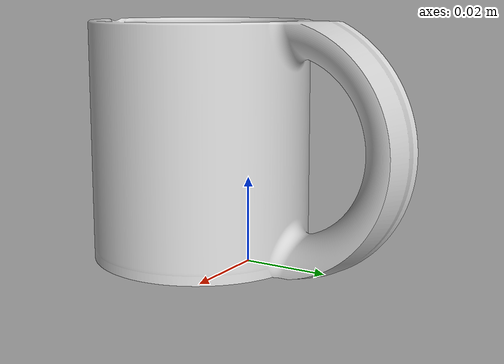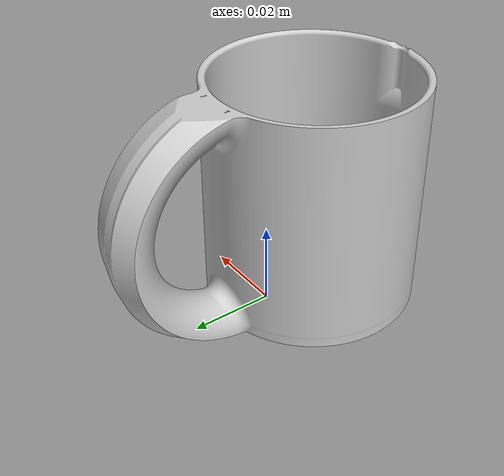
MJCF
<?xml version="1.0" ?>
<mujoco model="mug">
  <asset>
    <mesh name="visual_mesh" file="../meshes/mug_visual.stl"/>
    <mesh name="hull_0" file="../meshes/mug_hull_0.stl"/>
    <mesh name="hull_1" file="../meshes/mug_hull_1.stl"/>
    <mesh name="hull_2" file="../meshes/mug_hull_2.stl"/>
    <mesh name="hull_3" file="../meshes/mug_hull_3.stl"/>
    <mesh name="hull_4" file="../meshes/mug_hull_4.stl"/>
    <mesh name="hull_5" file="../meshes/mug_hull_5.stl"/>
    <mesh name="hull_6" file="../meshes/mug_hull_6.stl"/>
    <mesh name="hull_7" file="../meshes/mug_hull_7.stl"/>
    <mesh name="hull_8" file="../meshes/mug_hull_8.stl"/>
    <mesh name="hull_9" file="../meshes/mug_hull_9.stl"/>
    <mesh name="hull_10" file="../meshes/mug_hull_10.stl"/>
    <mesh name="hull_11" file="../meshes/mug_hull_11.stl"/>
    <mesh name="hull_12" file="../meshes/mug_hull_12.stl"/>
    <mesh name="hull_13" file="../meshes/mug_hull_13.stl"/>
    <mesh name="hull_14" file="../meshes/mug_hull_14.stl"/>
    <mesh name="hull_15" file="../meshes/mug_hull_15.stl"/>
    <mesh name="hull_16" file="../meshes/mug_hull_16.stl"/>
    <mesh name="hull_17" file="../meshes/mug_hull_17.stl"/>
    <mesh name="hull_18" file="../meshes/mug_hull_18.stl"/>
    <mesh name="hull_19" file="../meshes/mug_hull_19.stl"/>
    <mesh name="hull_20" file="../meshes/mug_hull_20.stl"/>
    <mesh name="hull_21" file="../meshes/mug_hull_21.stl"/>
    <mesh name="hull_22" file="../meshes/mug_hull_22.stl"/>
    <mesh name="hull_23" file="../meshes/mug_hull_23.stl"/>
    <mesh name="hull_24" file="../meshes/mug_hull_24.stl"/>
    <mesh name="hull_25" file="../meshes/mug_hull_25.stl"/>
    <mesh name="hull_26" file="../meshes/mug_hull_26.stl"/>
    <mesh name="hull_27" file="../meshes/mug_hull_27.stl"/>
    <mesh name="hull_28" file="../meshes/mug_hull_28.stl"/>
    <mesh name="hull_29" file="../meshes/mug_hull_29.stl"/>
    <mesh name="hull_30" file="../meshes/mug_hull_30.stl"/>
    <mesh name="hull_31" file="../meshes/mug_hull_31.stl"/>
  </asset>
  <worldbody>
    <body>
      <body name="object">
        <geom name="visual" type="mesh" mesh="visual_mesh" rgba="0.8 0.8 0.8 1.0" contype="0" conaffinity="0" group="1" density="1" pos="0 0 0.0001"/>
        <geom name="collision_0" type="mesh" mesh="hull_0" rgba="0.5 0.5 0.5 0.01" density="15.625" friction="0.95 0.3 0.1" condim="4" solref="0.001 1" solimp="0.998 0.998 0.001" group="0"/>
        <geom name="collision_1" type="mesh" mesh="hull_1" rgba="0.5 0.5 0.5 0.01" density="15.625" friction="0.95 0.3 0.1" condim="4" solref="0.001 1" solimp="0.998 0.998 0.001" group="0"/>
        <geom name="collision_2" type="mesh" mesh="hull_2" rgba="0.5 0.5 0.5 0.01" density="15.625" friction="0.95 0.3 0.1" condim="4" solref="0.001 1" solimp="0.998 0.998 0.001" group="0"/>
        <geom name="collision_3" type="mesh" mesh="hull_3" rgba="0.5 0.5 0.5 0.01" density="15.625" friction="0.95 0.3 0.1" condim="4" solref="0.001 1" solimp="0.998 0.998 0.001" group="0"/>
        <geom name="collision_4" type="mesh" mesh="hull_4" rgba="0.5 0.5 0.5 0.01" density="15.625" friction="0.95 0.3 0.1" condim="4" solref="0.001 1" solimp="0.998 0.998 0.001" group="0"/>
        <geom name="collision_5" type="mesh" mesh="hull_5" rgba="0.5 0.5 0.5 0.01" density="15.625" friction="0.95 0.3 0.1" condim="4" solref="0.001 1" solimp="0.998 0.998 0.001" group="0"/>
        <geom name="collision_6" type="mesh" mesh="hull_6" rgba="0.5 0.5 0.5 0.01" density="15.625" friction="0.95 0.3 0.1" condim="4" solref="0.001 1" solimp="0.998 0.998 0.001" group="0"/>
        <geom name="collision_7" type="mesh" mesh="hull_7" rgba="0.5 0.5 0.5 0.01" density="15.625" friction="0.95 0.3 0.1" condim="4" solref="0.001 1" solimp="0.998 0.998 0.001" group="0"/>
        <geom name="collision_8" type="mesh" mesh="hull_8" rgba="0.5 0.5 0.5 0.01" density="15.625" friction="0.95 0.3 0.1" condim="4" solref="0.001 1" solimp="0.998 0.998 0.001" group="0"/>
        <geom name="collision_9" type="mesh" mesh="hull_9" rgba="0.5 0.5 0.5 0.01" density="15.625" friction="0.95 0.3 0.1" condim="4" solref="0.001 1" solimp="0.998 0.998 0.001" group="0"/>
        <geom name="collision_10" type="mesh" mesh="hull_10" rgba="0.5 0.5 0.5 0.01" density="15.625" friction="0.95 0.3 0.1" condim="4" solref="0.001 1" solimp="0.998 0.998 0.001" group="0"/>
        <geom name="collision_11" type="mesh" mesh="hull_11" rgba="0.5 0.5 0.5 0.01" density="15.625" friction="0.95 0.3 0.1" condim="4" solref="0.001 1" solimp="0.998 0.998 0.001" group="0"/>
        <geom name="collision_12" type="mesh" mesh="hull_12" rgba="0.5 0.5 0.5 0.01" density="15.625" friction="0.95 0.3 0.1" condim="4" solref="0.001 1" solimp="0.998 0.998 0.001" group="0"/>
        <geom name="collision_13" type="mesh" mesh="hull_13" rgba="0.5 0.5 0.5 0.01" density="15.625" friction="0.95 0.3 0.1" condim="4" solref="0.001 1" solimp="0.998 0.998 0.001" group="0"/>
        <geom name="collision_14" type="mesh" mesh="hull_14" rgba="0.5 0.5 0.5 0.01" density="15.625" friction="0.95 0.3 0.1" condim="4" solref="0.001 1" solimp="0.998 0.998 0.001" group="0"/>
        <geom name="collision_15" type="mesh" mesh="hull_15" rgba="0.5 0.5 0.5 0.01" density="15.625" friction="0.95 0.3 0.1" condim="4" solref="0.001 1" solimp="0.998 0.998 0.001" group="0"/>
        <geom name="collision_16" type="mesh" mesh="hull_16" rgba="0.5 0.5 0.5 0.01" density="15.625" friction="0.95 0.3 0.1" condim="4" solref="0.001 1" solimp="0.998 0.998 0.001" group="0"/>
        <geom name="collision_17" type="mesh" mesh="hull_17" rgba="0.5 0.5 0.5 0.01" density="15.625" friction="0.95 0.3 0.1" condim="4" solref="0.001 1" solimp="0.998 0.998 0.001" group="0"/>
        <geom name="collision_18" type="mesh" mesh="hull_18" rgba="0.5 0.5 0.5 0.01" density="15.625" friction="0.95 0.3 0.1" condim="4" solref="0.001 1" solimp="0.998 0.998 0.001" group="0"/>
        <geom name="collision_19" type="mesh" mesh="hull_19" rgba="0.5 0.5 0.5 0.01" density="15.625" friction="0.95 0.3 0.1" condim="4" solref="0.001 1" solimp="0.998 0.998 0.001" group="0"/>
        <geom name="collision_20" type="mesh" mesh="hull_20" rgba="0.5 0.5 0.5 0.01" density="15.625" friction="0.95 0.3 0.1" condim="4" solref="0.001 1" solimp="0.998 0.998 0.001" group="0"/>
        <geom name="collision_21" type="mesh" mesh="hull_21" rgba="0.5 0.5 0.5 0.01" density="15.625" friction="0.95 0.3 0.1" condim="4" solref="0.001 1" solimp="0.998 0.998 0.001" group="0"/>
        <geom name="collision_22" type="mesh" mesh="hull_22" rgba="0.5 0.5 0.5 0.01" density="15.625" friction="0.95 0.3 0.1" condim="4" solref="0.001 1" solimp="0.998 0.998 0.001" group="0"/>
        <geom name="collision_23" type="mesh" mesh="hull_23" rgba="0.5 0.5 0.5 0.01" density="15.625" friction="0.95 0.3 0.1" condim="4" solref="0.001 1" solimp="0.998 0.998 0.001" group="0"/>
        <geom name="collision_24" type="mesh" mesh="hull_24" rgba="0.5 0.5 0.5 0.01" density="15.625" friction="0.95 0.3 0.1" condim="4" solref="0.001 1" solimp="0.998 0.998 0.001" group="0"/>
        <geom name="collision_25" type="mesh" mesh="hull_25" rgba="0.5 0.5 0.5 0.01" density="15.625" friction="0.95 0.3 0.1" condim="4" solref="0.001 1" solimp="0.998 0.998 0.001" group="0"/>
        <geom name="collision_26" type="mesh" mesh="hull_26" rgba="0.5 0.5 0.5 0.01" density="15.625" friction="0.95 0.3 0.1" condim="4" solref="0.001 1" solimp="0.998 0.998 0.001" group="0"/>
        <geom name="collision_27" type="mesh" mesh="hull_27" rgba="0.5 0.5 0.5 0.01" density="15.625" friction="0.95 0.3 0.1" condim="4" solref="0.001 1" solimp="0.998 0.998 0.001" group="0"/>
        <geom name="collision_28" type="mesh" mesh="hull_28" rgba="0.5 0.5 0.5 0.01" density="15.625" friction="0.95 0.3 0.1" condim="4" solref="0.001 1" solimp="0.998 0.998 0.001" group="0"/>
        <geom name="collision_29" type="mesh" mesh="hull_29" rgba="0.5 0.5 0.5 0.01" density="15.625" friction="0.95 0.3 0.1" condim="4" solref="0.001 1" solimp="0.998 0.998 0.001" group="0"/>
        <geom name="collision_30" type="mesh" mesh="hull_30" rgba="0.5 0.5 0.5 0.01" density="15.625" friction="0.95 0.3 0.1" condim="4" solref="0.001 1" solimp="0.998 0.998 0.001" group="0"/>
        <geom name="collision_31" type="mesh" mesh="hull_31" rgba="0.5 0.5 0.5 0.01" density="15.625" friction="0.95 0.3 0.1" condim="4" solref="0.001 1" solimp="0.998 0.998 0.001" group="0"/>
      </body>
      <site rgba="0 0 0 0" size="0.005" pos="0 0 0" name="bottom_site"/>
      <site rgba="0 0 0 0" size="0.005" pos="0 0 0.1" name="top_site"/>
      <site rgba="0 0 0 0" size="0.005" pos="0.05 0 0.05" name="horizontal_radius_site"/>
    </body>
  </worldbody>
</mujoco>
